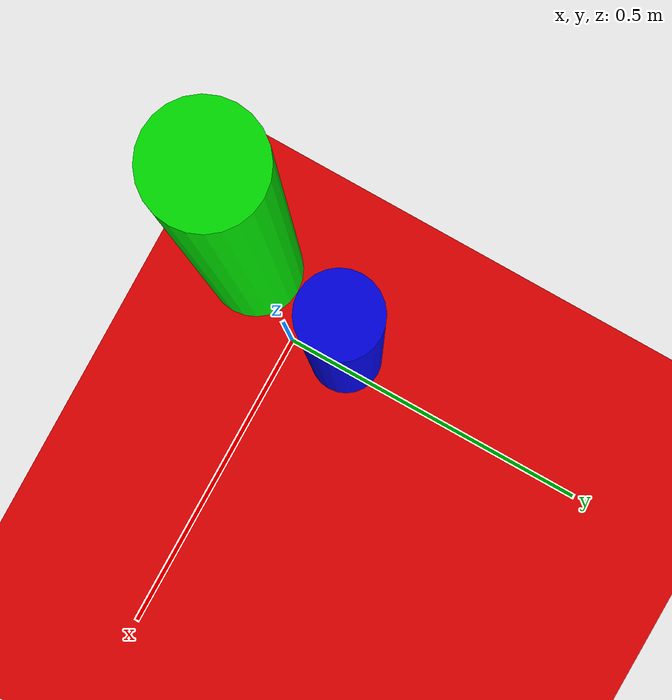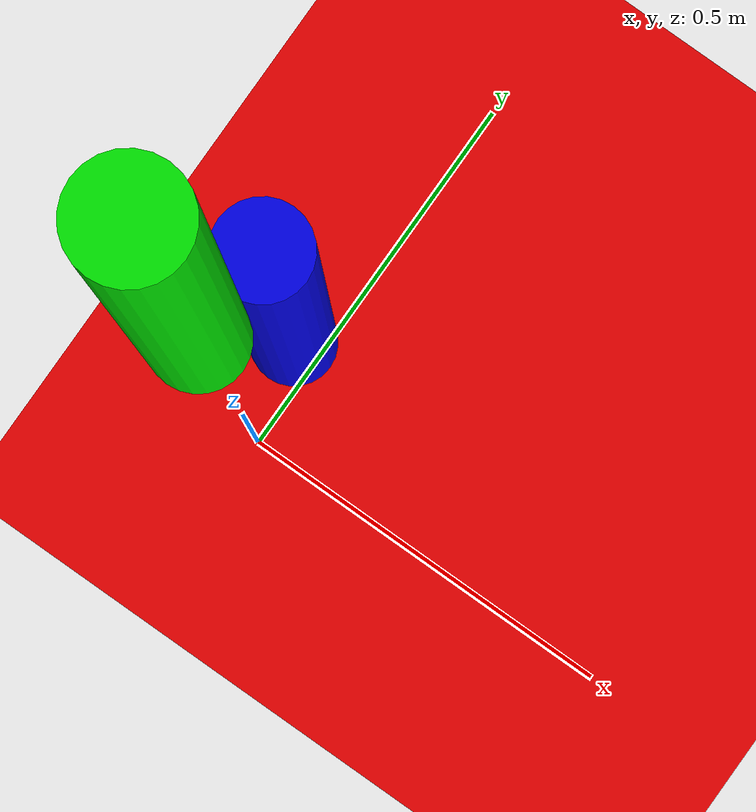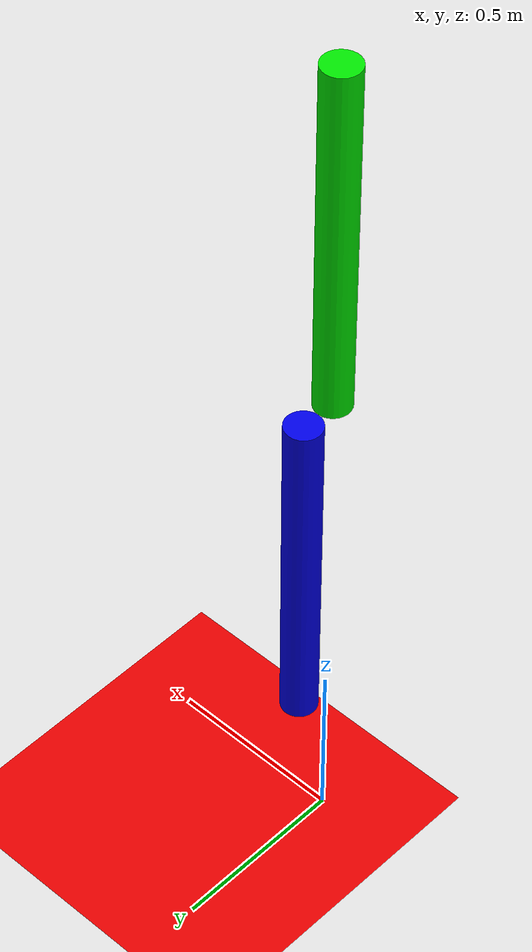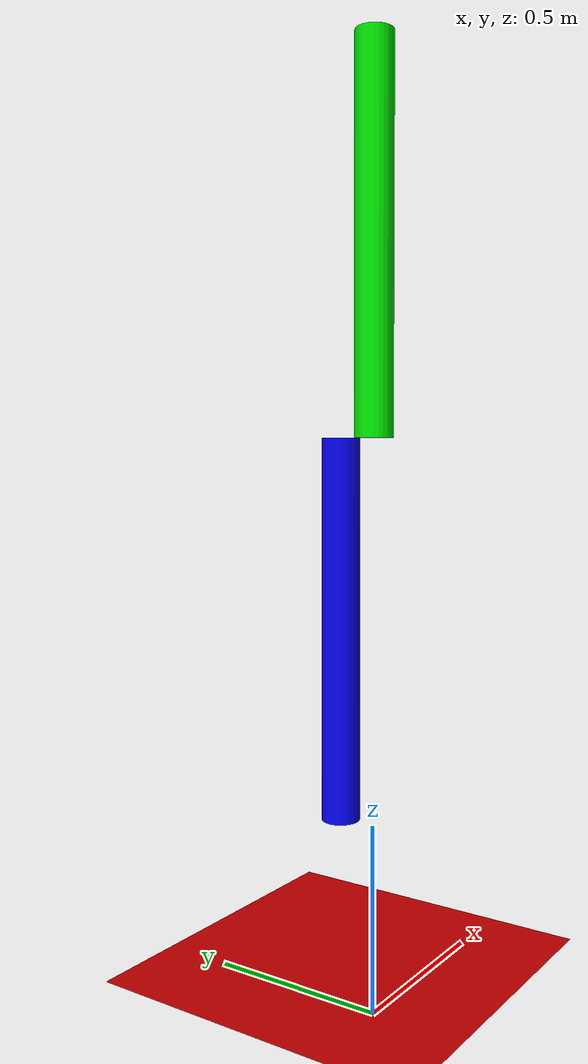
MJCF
<mujoco>
	<option timestep="0.0001" integrator="RK4" >
		<flag energy="enable" contact="enable"/>
	</option>
	<worldbody>
        <light diffuse=".5 .5 .5" pos="0 0 3" dir="0 0 -1"/>
		<geom type="plane" size="1 1 0.1" rgba=".9 0 0 1"/>
		<body pos="0 0 2.0" euler="0 180 0">
			<joint name="pin" type="hinge" axis = "0 -1 0" pos="0 0 -0.5"/>
			<geom type="cylinder" size="0.05 0.5" rgba="0 .9 0 1" mass="1"/>
			<body pos="0 0.1 1" euler="0 0 0">
				<joint name="pin2" type="hinge" axis = "0 -1 0" pos="0 0 -0.5"/>
				<geom type="cylinder" size="0.05 0.5" rgba="0 0 .9 1" mass="1"/>
			</body>
		</body>
	</worldbody>

	<actuator>
		<motor joint="pin" name="torque" gear="1" ctrllimited="true" ctrlrange="-100 100" />
		<motor joint="pin2" name="torque2" gear="1" ctrllimited="true" ctrlrange="-100 100" />
	</actuator>

</mujoco>
